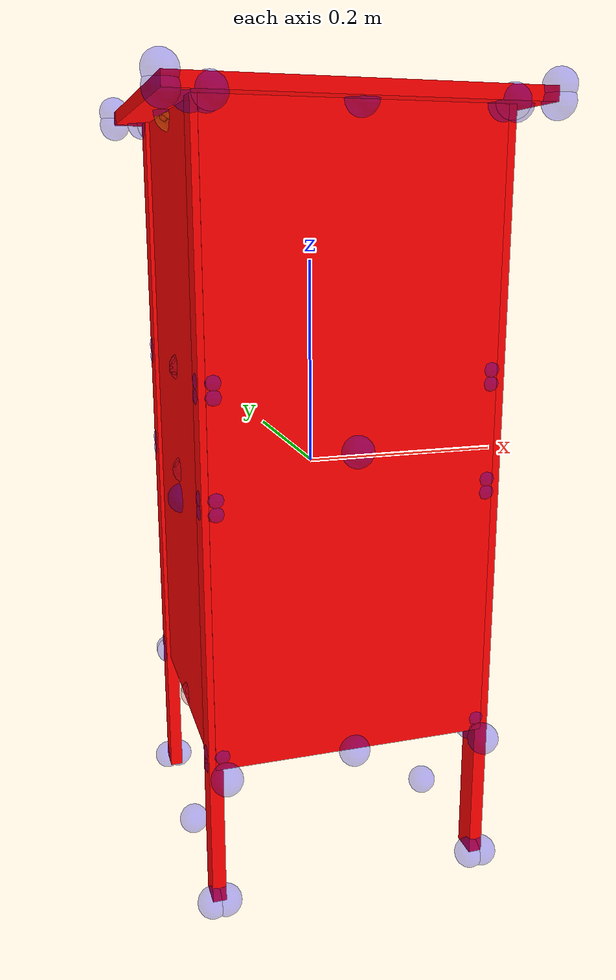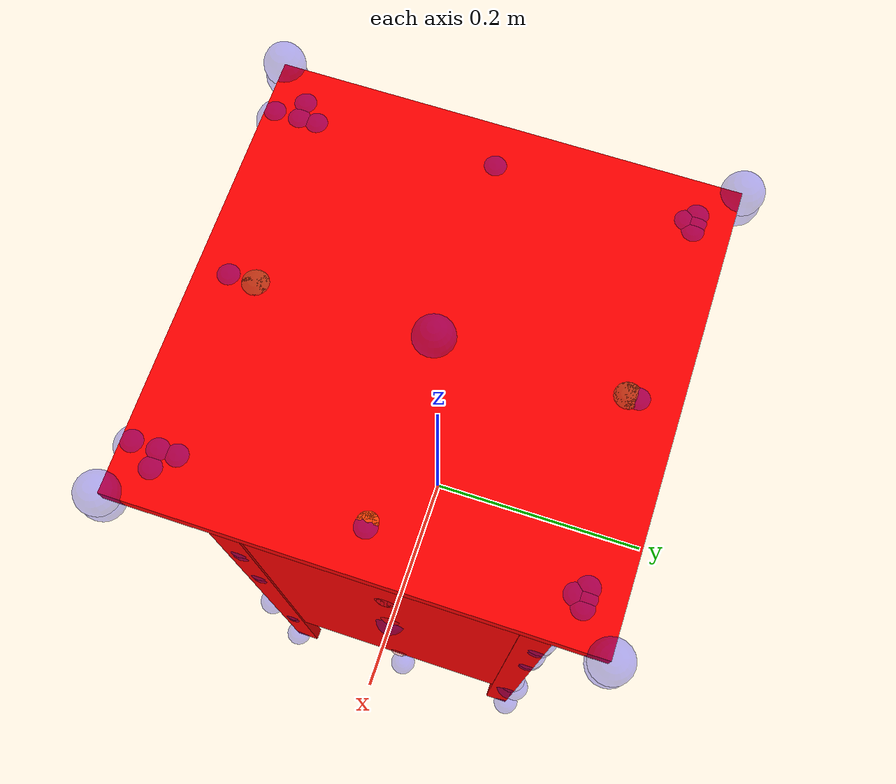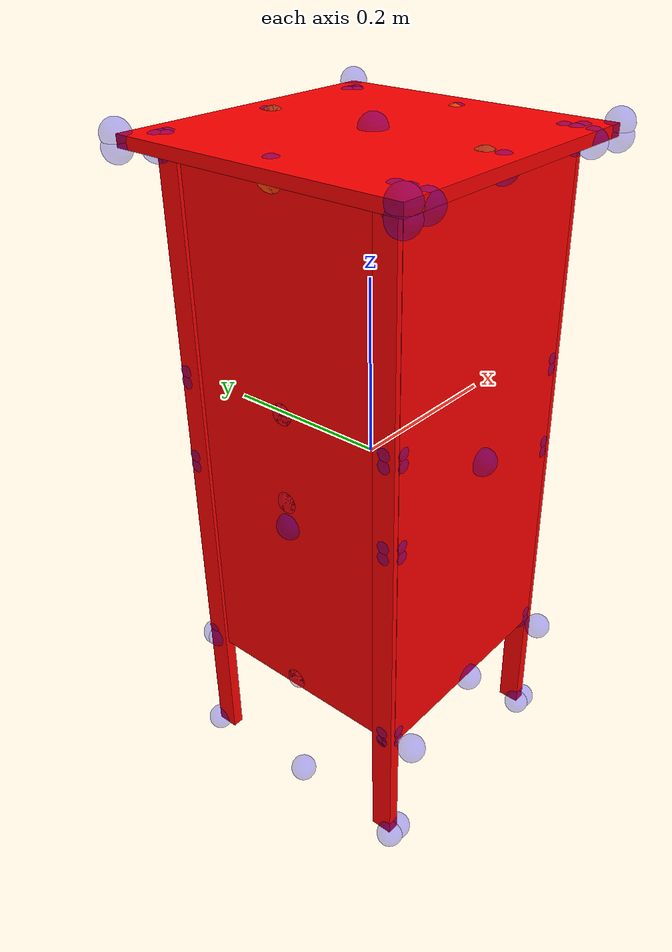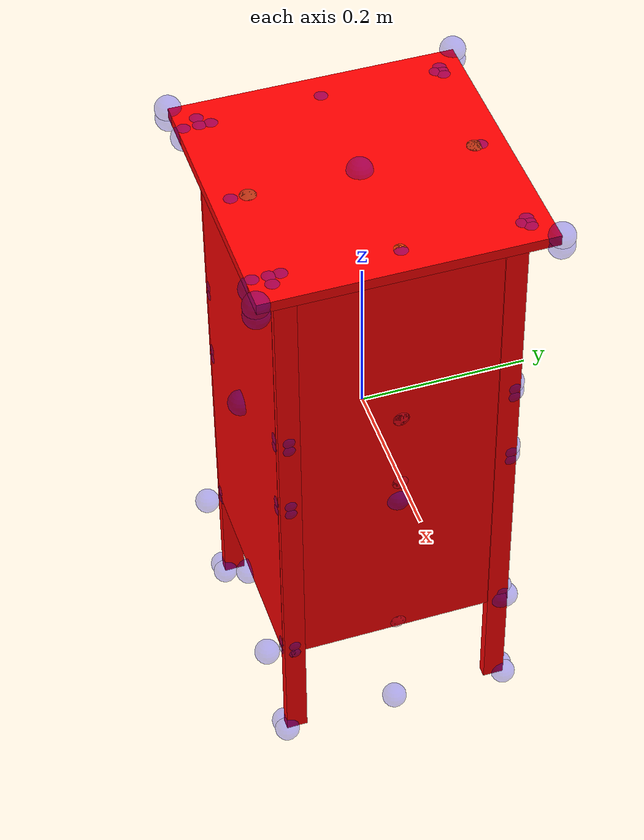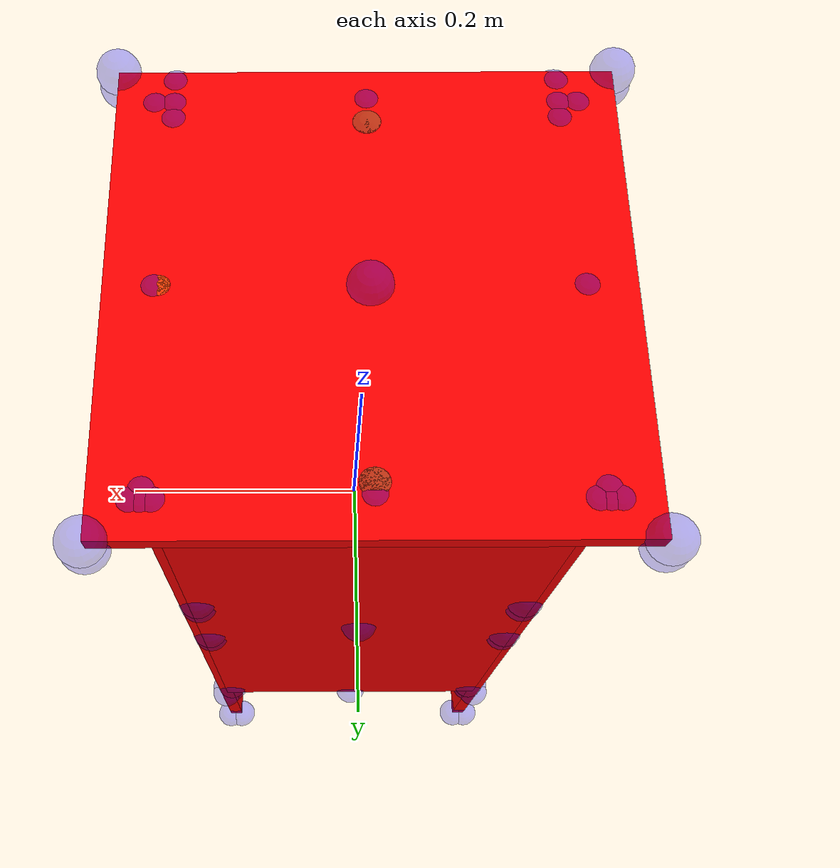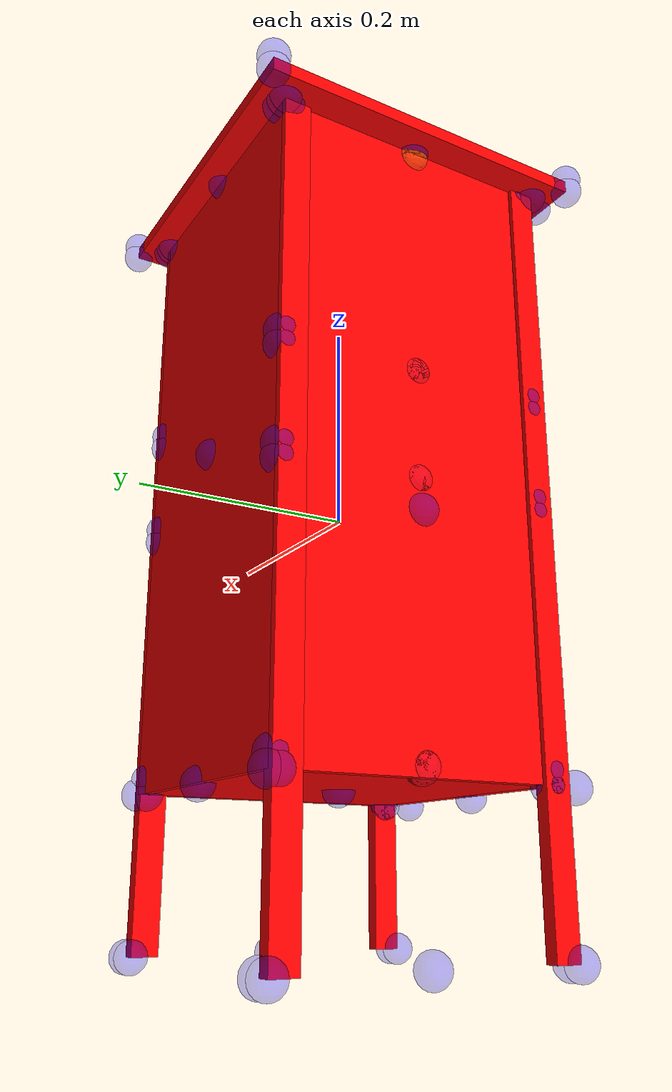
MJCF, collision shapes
<mujoco model="table_hemnes_0539">
    <asset>
        <mesh file="table_hemnes_0539/0.stl" name="part0" scale="0.001 0.001 0.001"/>
        <mesh file="table_hemnes_0539/7.stl" name="part7" scale="0.001 0.001 0.001"/>
        <mesh file="table_hemnes_0539/6.stl" name="part6" scale="0.001 0.001 0.001"/>
        <mesh file="table_hemnes_0539/5.stl" name="part5" scale="0.001 0.001 0.001"/>
        <mesh file="table_hemnes_0539/4.stl" name="part4" scale="0.001 0.001 0.001"/>
        <mesh file="table_hemnes_0539/3.stl" name="part3" scale="0.001 0.001 0.001"/>
        <mesh file="table_hemnes_0539/2.stl" name="part2" scale="0.001 0.001 0.001"/>
        <mesh file="table_hemnes_0539/1.stl" name="part1" scale="0.001 0.001 0.001"/>
    </asset>
    <equality>
        <weld active="false" body1="6_part6" body2="3_part3" solimp="1 1 0.5" solref="0.01 0.3"/>
        <weld active="false" body1="6_part6" body2="2_part2" solimp="1 1 0.5" solref="0.01 0.3"/>
        <weld active="false" body1="7_part7" body2="6_part6" solimp="1 1 0.5" solref="0.01 0.3"/>
        <weld active="false" body1="5_part5" body2="6_part6" solimp="1 1 0.5" solref="0.01 0.3"/>
        <weld active="false" body1="4_part4" body2="3_part3" solimp="1 1 0.5" solref="0.01 0.3"/>
        <weld active="false" body1="4_part4" body2="2_part2" solimp="1 1 0.5" solref="0.01 0.3"/>
        <weld active="false" body1="0_part0" body2="3_part3" solimp="1 1 0.5" solref="0.01 0.3"/>
        <weld active="false" body1="0_part0" body2="2_part2" solimp="1 1 0.5" solref="0.01 0.3"/>
        <weld active="false" body1="1_part1" body2="3_part3" solimp="1 1 0.5" solref="0.01 0.3"/>
        <weld active="false" body1="1_part1" body2="2_part2" solimp="1 1 0.5" solref="0.01 0.3"/>
    </equality>
    <worldbody>
        <body name="0_part0" pos="0.0 -0.0 0.0" quat="1 0 0 0">
            <geom conaffinity="0" contype="0" density="0" mesh="part0" name="0_part0_mesh" pos="0.0 0.0 0.0"
                  rgba="0.82 0.71 0.55 1" type="mesh"/>
            <site name="0_part0_horizontal_radius_site" pos="0.0 -0.0 0.0" quat="1 0 0 0" rgba="0 0 1 0.3"
                  size="0.015"/>
            <site name="0_part0_top_site" pos="0.0 0.0 0.00635" quat="1 0 0 0" rgba="0 0 1 0.3" size="0.015"/>
            <site name="0_part0_bottom_site" pos="0.0 0.0 -0.00635" quat="1 0 0 0" rgba="0 0 1 0.3" size="0.015"/>
            <site name="0_part0_corner_site8" pos="-0.127 0.13067253969999998 0.00635" quat="1 0 0 0" rgba="0 0 1 0.3"
                  size="0.015"/>
            <site name="0_part0_corner_site7" pos="0.127 0.13067253969999998 0.00635" quat="1 0 0 0" rgba="0 0 1 0.3"
                  size="0.015"/>
            <site name="0_part0_corner_site6" pos="0.127 -0.13067253969999998 0.00635" quat="1 0 0 0" rgba="0 0 1 0.3"
                  size="0.015"/>
            <site name="0_part0_corner_site5" pos="-0.127 -0.13067253969999998 0.00635" quat="1 0 0 0" rgba="0 0 1 0.3"
                  size="0.015"/>
            <site name="0_part0_corner_site4" pos="-0.127 0.13067253969999998 -0.00635" quat="1 0 0 0" rgba="0 0 1 0.3"
                  size="0.015"/>
            <site name="0_part0_corner_site3" pos="0.127 0.13067253969999998 -0.00635" quat="1 0 0 0" rgba="0 0 1 0.3"
                  size="0.015"/>
            <site name="0_part0_corner_site2" pos="0.127 -0.13067253969999998 -0.00635" quat="1 0 0 0" rgba="0 0 1 0.3"
                  size="0.015"/>
            <site name="0_part0_corner_site1" pos="-0.127 -0.13067253969999998 -0.00635" quat="1 0 0 0" rgba="0 0 1 0.3"
                  size="0.015"/>
            <site name="centpanel-legpanel,0,180,conn_site1" pos="-0.127 -0.00158748 0.0"
                  quat="0.7071067 0 -0.7071068 0" rgba="0.9019 0.0980 0.2941 0.3" size="0.015"/>
            <site name="centpanel-legpanel,0,180,conn_site2" pos="0.127 -0.00158748 0.0" quat="0.7071067 0 0.7071068 0"
                  rgba="0.9019 0.0980 0.2941 0.3" size="0.015"/>
            <geom density="50" name="noviz_collision_0_part0_0" pos="0.0 0.0 0.0" quat="1 0 0 0" rgba="1 0 0 1"
                  size="0.127 0.13067250000000002 0.00635" solref="0.001 1" type="box"/>
        </body>
        <body name="7_part7" pos="6e-09 -0.1460223796 0.0412750107" quat="1 0 0 0">
            <geom conaffinity="0" contype="0" density="0" mesh="part7" name="7_part7_mesh" pos="0.0 0.0 0.0"
                  rgba="0.82 0.71 0.55 1" type="mesh"/>
            <site name="7_part7_horizontal_radius_site" pos="0.0 0.0 0.0" quat="1 0 0 0" rgba="0 0 1 0.3" size="0.015"/>
            <site name="7_part7_top_site" pos="0.0 0.0 0.2921000137" quat="1 0 0 0" rgba="0 0 1 0.3" size="0.015"/>
            <site name="7_part7_bottom_site" pos="0.0 0.0 -0.2921000137" quat="1 0 0 0" rgba="0 0 1 0.3" size="0.015"/>
            <site name="7_part7_corner_site8" pos="-0.12700000620000002 0.015349792499999999 0.2921000137"
                  quat="1 0 0 0" rgba="0 0 1 0.3" size="0.015"/>
            <site name="7_part7_corner_site7" pos="0.12700000620000002 0.015349792499999999 0.2921000137" quat="1 0 0 0"
                  rgba="0 0 1 0.3" size="0.015"/>
            <site name="7_part7_corner_site6" pos="0.12700000620000002 -0.015349792499999999 0.2921000137"
                  quat="1 0 0 0" rgba="0 0 1 0.3" size="0.015"/>
            <site name="7_part7_corner_site5" pos="-0.12700000620000002 -0.015349792499999999 0.2921000137"
                  quat="1 0 0 0" rgba="0 0 1 0.3" size="0.015"/>
            <site name="7_part7_corner_site4" pos="-0.12700000620000002 0.015349792499999999 -0.2921000137"
                  quat="1 0 0 0" rgba="0 0 1 0.3" size="0.015"/>
            <site name="7_part7_corner_site3" pos="0.12700000620000002 0.015349792499999999 -0.2921000137"
                  quat="1 0 0 0" rgba="0 0 1 0.3" size="0.015"/>
            <site name="7_part7_corner_site2" pos="0.12700000620000002 -0.015349792499999999 -0.2921000137"
                  quat="1 0 0 0" rgba="0 0 1 0.3" size="0.015"/>
            <site name="7_part7_corner_site1" pos="-0.12700000620000002 -0.015349792499999999 -0.2921000137"
                  quat="1 0 0 0" rgba="0 0 1 0.3" size="0.015"/>
            <site name="sidepanel-toppanel,0,180,conn_site1" pos="-1e-08 0.01902238 0.293225" quat="1 0 0 0"
                  rgba="0.2352 0.7058 0.2941 0.3" size="0.015"/>
            <geom density="50" name="noviz_collision_7_part7_0" pos="-0.0005932 0.00952238 2.499e-05" quat="1 0 0 0"
                  rgba="1 0 0 1" size="0.133 0.00725 0.292" solref="0.001 1" type="box"/>
        </body>
        <body name="6_part6" pos="-3.9e-09 -0.0031750041000000004 0.33972500000000005" quat="1 0 0 0">
            <geom conaffinity="0" contype="0" density="0" mesh="part6" name="6_part6_mesh" pos="0.0 0.0 0.0"
                  rgba="0.82 0.71 0.55 1" type="mesh"/>
            <site name="6_part6_horizontal_radius_site" pos="-2.2000000000000003e-09 -2e-09 0.0" quat="1 0 0 0"
                  rgba="0 0 1 0.3" size="0.015"/>
            <site name="6_part6_top_site" pos="-2.2000000000000003e-09 -2e-09 0.00635" quat="1 0 0 0" rgba="0 0 1 0.3"
                  size="0.015"/>
            <site name="6_part6_bottom_site" pos="-2.2000000000000003e-09 -2e-09 -0.00635" quat="1 0 0 0"
                  rgba="0 0 1 0.3" size="0.015"/>
            <site name="6_part6_corner_site8" pos="-0.1651000061 0.1651000021 0.00635" quat="1 0 0 0" rgba="0 0 1 0.3"
                  size="0.015"/>
            <site name="6_part6_corner_site7" pos="0.1651000017 0.1651000021 0.00635" quat="1 0 0 0" rgba="0 0 1 0.3"
                  size="0.015"/>
            <site name="6_part6_corner_site6" pos="0.1651000017 -0.1651000061 0.00635" quat="1 0 0 0" rgba="0 0 1 0.3"
                  size="0.015"/>
            <site name="6_part6_corner_site5" pos="-0.1651000061 -0.1651000061 0.00635" quat="1 0 0 0" rgba="0 0 1 0.3"
                  size="0.015"/>
            <site name="6_part6_corner_site4" pos="-0.1651000061 0.1651000021 -0.00635" quat="1 0 0 0" rgba="0 0 1 0.3"
                  size="0.015"/>
            <site name="6_part6_corner_site3" pos="0.1651000017 0.1651000021 -0.00635" quat="1 0 0 0" rgba="0 0 1 0.3"
                  size="0.015"/>
            <site name="6_part6_corner_site2" pos="0.1651000017 -0.1651000061 -0.00635" quat="1 0 0 0" rgba="0 0 1 0.3"
                  size="0.015"/>
            <site name="6_part6_corner_site1" pos="-0.1651000061 -0.1651000061 -0.00635" quat="1 0 0 0" rgba="0 0 1 0.3"
                  size="0.015"/>
            <site name="toppanel-legpanel,0,180,conn_site2" pos="-0.1325 2e-08 -0.00972501" quat="1 0 0 0"
                  rgba="1.0 0.8823 0.0980 0.3" size="0.015"/>
            <site name="toppanel-legpanel,0,180,conn_site1" pos="0.13019999999999998 2e-08 -0.006625" quat="1 0 0 0"
                  rgba="1.0 0.8823 0.0980 0.3" size="0.015"/>
            <site name="toppanel-sidepanel,0,180,conn_site2" pos="0.0 0.130175 -0.00522501" quat="1 0 0 0"
                  rgba="0.2352 0.7058 0.2941 0.3" size="0.015"/>
            <site name="toppanel-sidepanel,0,180,conn_site1" pos="0.0 -0.123825 -0.00522501" quat="1 0 0 0"
                  rgba="0.2352 0.7058 0.2941 0.3" size="0.015"/>
            <geom density="50" name="noviz_collision_6_part6_0" pos="1e-08 1e-08 -2.847e-05" quat="1 0 0 0"
                  rgba="1 0 0 1" size="0.1651 0.1651 0.0063215300000000006" solref="0.001 1" type="box"/>
        </body>
        <body name="5_part5" pos="0.0 0.1338475397 0.041275" quat="1 0 0 0">
            <geom conaffinity="0" contype="0" density="0" mesh="part5" name="5_part5_mesh" pos="0.0 0.0 0.0"
                  rgba="0.82 0.71 0.55 1" type="mesh"/>
            <site name="5_part5_horizontal_radius_site" pos="-0.0 0.0 0.0" quat="1 0 0 0" rgba="0 0 1 0.3"
                  size="0.015"/>
            <site name="5_part5_top_site" pos="0.0 0.0 0.2921" quat="1 0 0 0" rgba="0 0 1 0.3" size="0.015"/>
            <site name="5_part5_bottom_site" pos="0.0 0.0 -0.2921" quat="1 0 0 0" rgba="0 0 1 0.3" size="0.015"/>
            <site name="5_part5_corner_site8" pos="-0.13335 0.003175 0.2921" quat="1 0 0 0" rgba="0 0 1 0.3"
                  size="0.015"/>
            <site name="5_part5_corner_site7" pos="0.13335 0.003175 0.2921" quat="1 0 0 0" rgba="0 0 1 0.3"
                  size="0.015"/>
            <site name="5_part5_corner_site6" pos="0.13335 -0.003175 0.2921" quat="1 0 0 0" rgba="0 0 1 0.3"
                  size="0.015"/>
            <site name="5_part5_corner_site5" pos="-0.13335 -0.003175 0.2921" quat="1 0 0 0" rgba="0 0 1 0.3"
                  size="0.015"/>
            <site name="5_part5_corner_site4" pos="-0.13335 0.003175 -0.2921" quat="1 0 0 0" rgba="0 0 1 0.3"
                  size="0.015"/>
            <site name="5_part5_corner_site3" pos="0.13335 0.003175 -0.2921" quat="1 0 0 0" rgba="0 0 1 0.3"
                  size="0.015"/>
            <site name="5_part5_corner_site2" pos="0.13335 -0.003175 -0.2921" quat="1 0 0 0" rgba="0 0 1 0.3"
                  size="0.015"/>
            <site name="5_part5_corner_site1" pos="-0.13335 -0.003175 -0.2921" quat="1 0 0 0" rgba="0 0 1 0.3"
                  size="0.015"/>
            <site name="sidepanel-toppanel,0,180,conn_site2" pos="0.0 -0.00684753 0.293225" quat="1 0 0 0"
                  rgba="0.2352 0.7058 0.2941 0.3" size="0.015"/>
            <geom density="50" name="noviz_collision_5_part5_0" pos="0.0 0.0 0.0" quat="1 0 0 0" rgba="1 0 0 1"
                  size="0.13335 0.0031749900000000004 0.2921" solref="0.001 1" type="box"/>
        </body>
        <body name="4_part4" pos="5.1e-09 4.06e-08 -0.2444750014" quat="1 0 0 0">
            <geom conaffinity="0" contype="0" density="0" mesh="part4" name="4_part4_mesh" pos="0.0 0.0 0.0"
                  rgba="0.82 0.71 0.55 1" type="mesh"/>
            <site name="4_part4_horizontal_radius_site" pos="0.0 -3.4000000000000003e-09 1e-10" quat="1 0 0 0"
                  rgba="0 0 1 0.3" size="0.015"/>
            <site name="4_part4_top_site" pos="0.0 -3.4000000000000003e-09 0.006350001500000001" quat="1 0 0 0"
                  rgba="0 0 1 0.3" size="0.015"/>
            <site name="4_part4_bottom_site" pos="0.0 -3.4000000000000003e-09 -0.0063500013" quat="1 0 0 0"
                  rgba="0 0 1 0.3" size="0.015"/>
            <site name="4_part4_corner_site8" pos="-0.12700000760000002 0.1306725769 0.006350001500000001"
                  quat="1 0 0 0" rgba="0 0 1 0.3" size="0.015"/>
            <site name="4_part4_corner_site7" pos="0.12700000760000002 0.1306725769 0.006350001500000001" quat="1 0 0 0"
                  rgba="0 0 1 0.3" size="0.015"/>
            <site name="4_part4_corner_site6" pos="0.12700000760000002 -0.13067258369999998 0.006350001500000001"
                  quat="1 0 0 0" rgba="0 0 1 0.3" size="0.015"/>
            <site name="4_part4_corner_site5" pos="-0.12700000760000002 -0.13067258369999998 0.006350001500000001"
                  quat="1 0 0 0" rgba="0 0 1 0.3" size="0.015"/>
            <site name="4_part4_corner_site4" pos="-0.12700000760000002 0.1306725769 -0.0063500013" quat="1 0 0 0"
                  rgba="0 0 1 0.3" size="0.015"/>
            <site name="4_part4_corner_site3" pos="0.12700000760000002 0.1306725769 -0.0063500013" quat="1 0 0 0"
                  rgba="0 0 1 0.3" size="0.015"/>
            <site name="4_part4_corner_site2" pos="0.12700000760000002 -0.13067258369999998 -0.0063500013"
                  quat="1 0 0 0" rgba="0 0 1 0.3" size="0.015"/>
            <site name="4_part4_corner_site1" pos="-0.12700000760000002 -0.13067258369999998 -0.0063500013"
                  quat="1 0 0 0" rgba="0 0 1 0.3" size="0.015"/>
            <site name="centpanel-legpanel,0,180,conn_site3" pos="-0.1275 -0.00158751 0.002375" quat="1 0 0 0"
                  rgba="0.9019 0.0980 0.2941 0.3" size="0.015"/>

            <site name="centpanel-legpanel,0,180,conn_site5" pos="-0.127 -0.00158751 0.002375"
                  quat="0.7071067 0 -0.7071068 0" rgba="0.9019 0.0980 0.2941 0.3" size="0.015"/>
            <site name="centpanel-legpanel,0,180,conn_site6" pos="0.127 -0.00158751 0.00107501"
                  quat="0.7071067 0 0.7071068 0" rgba="0.9019 0.0980 0.2941 0.3" size="0.015"/>
            <geom density="50" name="noviz_collision_4_part4_0" pos="-1e-08 -4e-08 -6.143e-05" quat="1 0 0 0"
                  rgba="1 0 0 1" size="0.127 0.13067250000000002 0.00628856" solref="0.001 1" type="box"/>
        </body>
        <body name="3_part3" pos="-0.133350001 -0.0031749685 -0.0285749878" quat="1 0 0 0">
            <geom conaffinity="0" contype="0" density="0" mesh="part3" name="3_part3_mesh" pos="0.0 0.0 0.0"
                  rgba="0.82 0.71 0.55 1" type="mesh"/>
            <site name="3_part3_horizontal_radius_site" pos="1e-10 -3e-10 -0.0" quat="1 0 0 0" rgba="0 0 1 0.3"
                  size="0.015"/>
            <site name="3_part3_top_site" pos="1e-10 -4e-10 0.3619500122" quat="1 0 0 0" rgba="0 0 1 0.3" size="0.015"/>
            <site name="3_part3_bottom_site" pos="1e-10 -4e-10 -0.3619500122" quat="1 0 0 0" rgba="0 0 1 0.3"
                  size="0.015"/>
            <site name="3_part3_corner_site8" pos="-0.0063500009000000005 0.1401975708 0.3619500122" quat="1 0 0 0"
                  rgba="0 0 1 0.3" size="0.015"/>
            <site name="3_part3_corner_site7" pos="0.0063500011000000006 0.1401975708 0.3619500122" quat="1 0 0 0"
                  rgba="0 0 1 0.3" size="0.015"/>
            <site name="3_part3_corner_site6" pos="0.0063500011000000006 -0.1401975715 0.3619500122" quat="1 0 0 0"
                  rgba="0 0 1 0.3" size="0.015"/>
            <site name="3_part3_corner_site5" pos="-0.0063500009000000005 -0.1401975715 0.3619500122" quat="1 0 0 0"
                  rgba="0 0 1 0.3" size="0.015"/>
            <site name="3_part3_corner_site4" pos="-0.0063500009000000005 0.1401975708 -0.3619500122" quat="1 0 0 0"
                  rgba="0 0 1 0.3" size="0.015"/>
            <site name="3_part3_corner_site3" pos="0.0063500011000000006 0.1401975708 -0.3619500122" quat="1 0 0 0"
                  rgba="0 0 1 0.3" size="0.015"/>
            <site name="3_part3_corner_site2" pos="0.0063500011000000006 -0.1401975715 -0.3619500122" quat="1 0 0 0"
                  rgba="0 0 1 0.3" size="0.015"/>
            <site name="3_part3_corner_site1" pos="-0.0063500009000000005 -0.1401975715 -0.3619500122" quat="1 0 0 0"
                  rgba="0 0 1 0.3" size="0.015"/>
            <site name="legpanel-centpanel,0,180,conn_site0" pos="0.00585001 0.0015875 -0.21352500000000002"
                  quat="1 0 0 0" rgba="0.9019 0.0980 0.2941 0.3" size="0.015"/>
            <site name="legpanel-centpanel,0,180,conn_site1" pos="0.0063500100000000005 0.0015875 -0.21352500000000002"
                  quat="0.7071067 0 -0.7071068 0" rgba="0.9019 0.0980 0.2941 0.3" size="0.015"/>
            <site name="legpanel-centpanel,0,180,conn_site2" pos="0.0063500100000000005 0.00158748 0.130575"
                  quat="0.7071067 0 -0.7071068 0" rgba="0.9019 0.0980 0.2941 0.3" size="0.015"/>
            <site name="legpanel-centpanel,0,180,conn_site3" pos="0.0063500100000000005 0.00158748 0.02857499"
                  quat="0.7071067 0 -0.7071068 0" rgba="0.9019 0.0980 0.2941 0.3" size="0.015"/>
            <site name="legpanel-toppanel,0,180,conn_site2" pos="0.0008500100000000001 -2e-08 0.358575" quat="1 0 0 0"
                  rgba="1.0 0.8823 0.0980 0.3" size="0.015"/>
            <geom density="50" name="noviz_collision_3_part3_1" pos="0.00311 0.00017497 0.06957499" quat="1 0 0 0"
                  rgba="1 0 0 1" size="0.00565508 0.1145 0.292" solref="0.001 1" type="box"/>
            <geom density="50" name="noviz_collision_3_part3_2" pos="-4.999e-05 0.127495 -0.00022501" quat="1 0 0 0"
                  rgba="1 0 0 1" size="0.006500000000000001 0.0127 0.362" solref="0.001 1" type="box"/>
            <geom density="50" name="noviz_collision_3_part3_3" pos="-4.999e-05 -0.1274975 -0.00022501" quat="1 0 0 0"
                  rgba="1 0 0 1" size="0.006500000000000001 0.0127 0.362" solref="0.001 1" type="box"/>
        </body>
        <body name="2_part2" pos="0.13335 -0.0031749685 -0.0285749878" quat="1 0 0 0">
            <geom conaffinity="0" contype="0" density="0" mesh="part2" name="2_part2_mesh" pos="0.0 0.0 0.0"
                  rgba="0.82 0.71 0.55 1" type="mesh"/>
            <site name="2_part2_horizontal_radius_site" pos="0.0 -3e-10 -0.0" quat="1 0 0 0" rgba="0 0 1 0.3"
                  size="0.015"/>
            <site name="2_part2_top_site" pos="0.0 -4e-10 0.3619500122" quat="1 0 0 0" rgba="0 0 1 0.3" size="0.015"/>
            <site name="2_part2_bottom_site" pos="0.0 -4e-10 -0.3619500122" quat="1 0 0 0" rgba="0 0 1 0.3"
                  size="0.015"/>
            <site name="2_part2_corner_site8" pos="-0.00635 0.1401975708 0.3619500122" quat="1 0 0 0" rgba="0 0 1 0.3"
                  size="0.015"/>
            <site name="2_part2_corner_site7" pos="0.00635 0.1401975708 0.3619500122" quat="1 0 0 0" rgba="0 0 1 0.3"
                  size="0.015"/>
            <site name="2_part2_corner_site6" pos="0.00635 -0.1401975715 0.3619500122" quat="1 0 0 0" rgba="0 0 1 0.3"
                  size="0.015"/>
            <site name="2_part2_corner_site5" pos="-0.00635 -0.1401975715 0.3619500122" quat="1 0 0 0" rgba="0 0 1 0.3"
                  size="0.015"/>
            <site name="2_part2_corner_site4" pos="-0.00635 0.1401975708 -0.3619500122" quat="1 0 0 0" rgba="0 0 1 0.3"
                  size="0.015"/>
            <site name="2_part2_corner_site3" pos="0.00635 0.1401975708 -0.3619500122" quat="1 0 0 0" rgba="0 0 1 0.3"
                  size="0.015"/>
            <site name="2_part2_corner_site2" pos="0.00635 -0.1401975715 -0.3619500122" quat="1 0 0 0" rgba="0 0 1 0.3"
                  size="0.015"/>
            <site name="2_part2_corner_site1" pos="-0.00635 -0.1401975715 -0.3619500122" quat="1 0 0 0" rgba="0 0 1 0.3"
                  size="0.015"/>

            <site name="legpanel-centpanel,0,180,conn_site5" pos="-0.0063500100000000005 0.0015875 -0.214825"
                  quat="0.7071067 0 0.7071068 0" rgba="0.9019 0.0980 0.2941 0.3" size="0.015"/>
            <site name="legpanel-centpanel,0,180,conn_site6" pos="-0.0063500100000000005 0.00158748 0.130575"
                  quat="0.7071067 0 0.7071068 0" rgba="0.9019 0.0980 0.2941 0.3" size="0.015"/>
            <site name="legpanel-centpanel,0,180,conn_site7" pos="-0.0063500100000000005 0.00158748 0.02857499"
                  quat="0.7071067 0 0.7071068 0" rgba="0.9019 0.0980 0.2941 0.3" size="0.015"/>
            <site name="legpanel-toppanel,0,180,conn_site4" pos="-0.00315001 -2e-08 0.361675" quat="1 0 0 0"
                  rgba="1.0 0.8823 0.0980 0.3" size="0.015"/>
            <geom density="50" name="noviz_collision_2_part2_0" pos="-0.0006949300000000001 0.00017497 0.06957499"
                  quat="1 0 0 0" rgba="1 0 0 1" size="0.00565508 0.1145 0.292" solref="0.001 1" type="box"/>
            <geom density="50" name="noviz_collision_2_part2_1" pos="4.999e-05 -0.1274975 -0.00022501" quat="1 0 0 0"
                  rgba="1 0 0 1" size="0.006500000000000001 0.0127 0.362" solref="0.001 1" type="box"/>
            <geom density="50" name="noviz_collision_2_part2_2" pos="4.999e-05 0.127495 -0.00022501" quat="1 0 0 0"
                  rgba="1 0 0 1" size="0.006500000000000001 0.0127 0.362" solref="0.001 1" type="box"/>
        </body>
        <body name="1_part1" pos="-0.0 0.0 0.1016" quat="1 0 0 0">
            <geom conaffinity="0" contype="0" density="0" mesh="part1" name="1_part1_mesh" pos="0.0 0.0 0.0"
                  rgba="0.82 0.71 0.55 1" type="mesh"/>
            <site name="1_part1_horizontal_radius_site" pos="-0.0 0.0 0.0" quat="1 0 0 0" rgba="0 0 1 0.3"
                  size="0.015"/>
            <site name="1_part1_top_site" pos="0.0 0.0 0.00635" quat="1 0 0 0" rgba="0 0 1 0.3" size="0.015"/>
            <site name="1_part1_bottom_site" pos="0.0 0.0 -0.00635" quat="1 0 0 0" rgba="0 0 1 0.3" size="0.015"/>
            <site name="1_part1_corner_site8" pos="-0.127 0.13067253969999998 0.00635" quat="1 0 0 0" rgba="0 0 1 0.3"
                  size="0.015"/>
            <site name="1_part1_corner_site7" pos="0.127 0.13067253969999998 0.00635" quat="1 0 0 0" rgba="0 0 1 0.3"
                  size="0.015"/>
            <site name="1_part1_corner_site6" pos="0.127 -0.13067253969999998 0.00635" quat="1 0 0 0" rgba="0 0 1 0.3"
                  size="0.015"/>
            <site name="1_part1_corner_site5" pos="-0.127 -0.13067253969999998 0.00635" quat="1 0 0 0" rgba="0 0 1 0.3"
                  size="0.015"/>
            <site name="1_part1_corner_site4" pos="-0.127 0.13067253969999998 -0.00635" quat="1 0 0 0" rgba="0 0 1 0.3"
                  size="0.015"/>
            <site name="1_part1_corner_site3" pos="0.127 0.13067253969999998 -0.00635" quat="1 0 0 0" rgba="0 0 1 0.3"
                  size="0.015"/>
            <site name="1_part1_corner_site2" pos="0.127 -0.13067253969999998 -0.00635" quat="1 0 0 0" rgba="0 0 1 0.3"
                  size="0.015"/>
            <site name="1_part1_corner_site1" pos="-0.127 -0.13067253969999998 -0.00635" quat="1 0 0 0" rgba="0 0 1 0.3"
                  size="0.015"/>
            <site name="centpanel-legpanel,0,180,conn_site7" pos="0.127 -0.00158748 0.0004"
                  quat="0.7071067 0 0.7071068 0" rgba="0.9019 0.0980 0.2941 0.3" size="0.015"/>
            <site name="centpanel-legpanel,0,180,conn_site8" pos="-0.127 -0.00158748 0.0004"
                  quat="0.7071067 0 -0.7071068 0" rgba="0.9019 0.0980 0.2941 0.3" size="0.015"/>
            <geom density="50" name="noviz_collision_1_part1_0" pos="0.0 0.0 0.0" quat="1 0 0 0" rgba="1 0 0 1"
                  size="0.127 0.13067250000000002 0.00635" solref="0.001 1" type="box"/>
        </body>
    </worldbody>
</mujoco>
